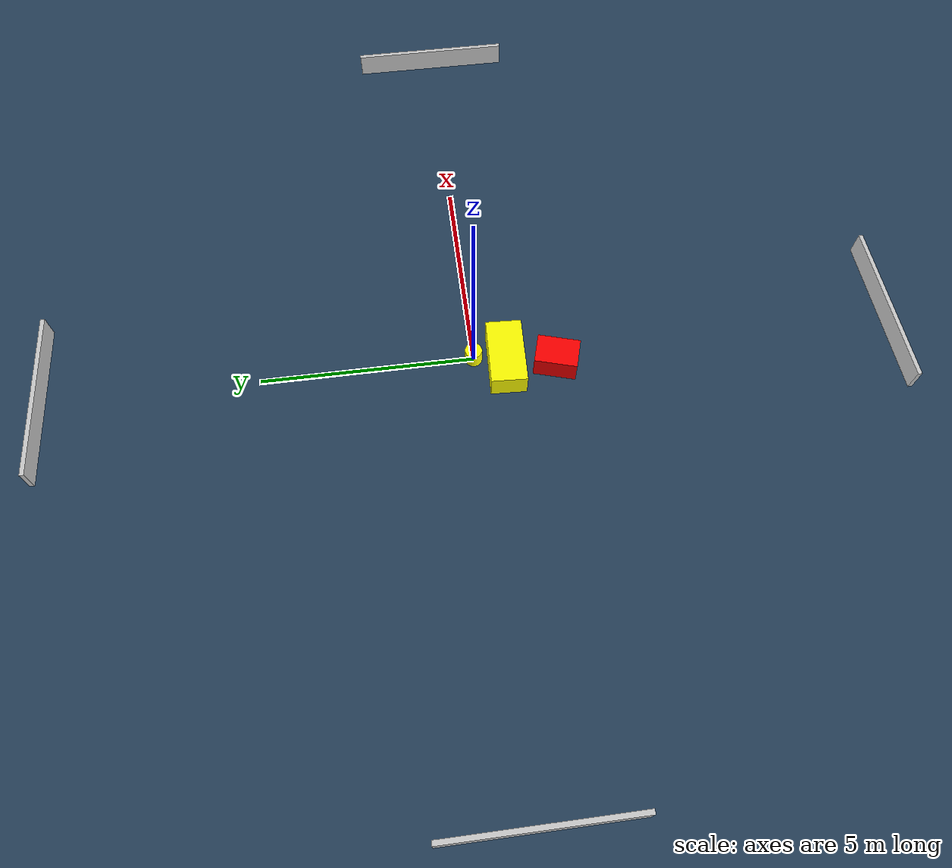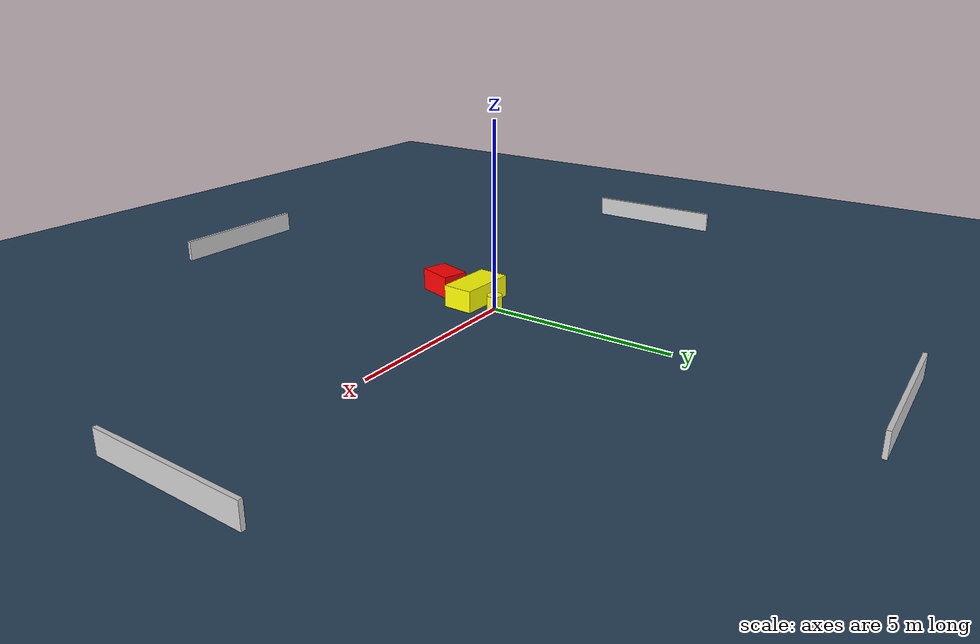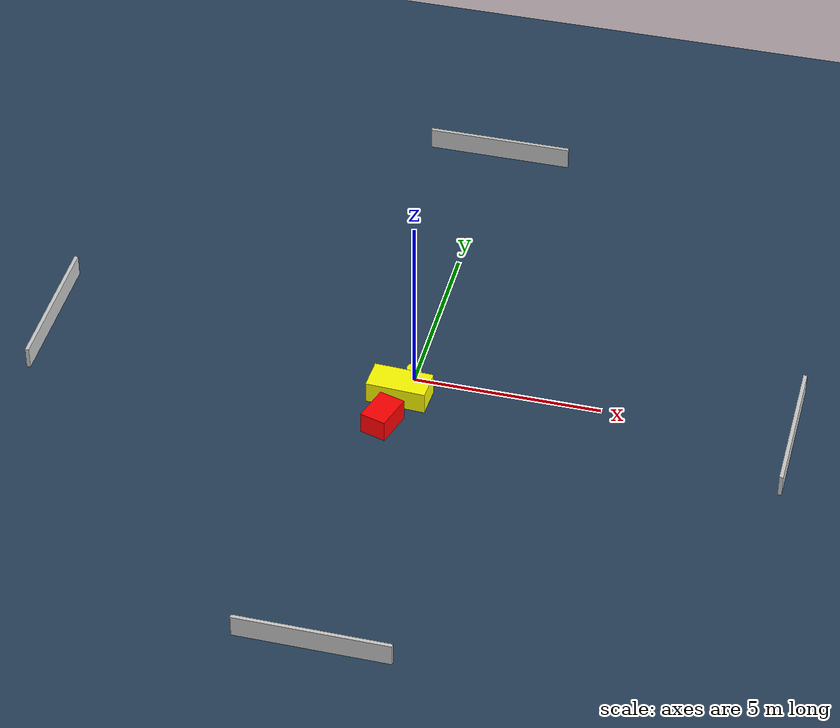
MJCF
<?xml version="1.0" ?>
<mujoco model="generated_environment">
  <option timestep="0.01" integrator="RK4" cone="elliptic"/>
  <default>
    <geom density="1"/>
  </default>
  <asset>
    <texture builtin="gradient" height="3072" name="skybox" rgb1="0.3 0.5 0.7" rgb2="0 0 0" type="skybox" width="512"/>
    <texture builtin="checker" height="300" name="groundplane" rgb1="0.2 0.3 0.4" rgb2="0.1 0.2 0.3" type="2d" width="300"/>
    <material name="groundplane" reflectance="0.2" texrepeat="5 5" texture="groundplane"/>
  </asset>
  <worldbody>
    <light dir="0 0 -1" directional="true" pos="0 0 1.5"/>
    <geom condim="3" friction="0.5 0.005 0.001" material="groundplane" name="floor" pos="0 0 0" size="0 0 0.05" type="plane"/>
    <body name="walls">
      <geom name="wall_1" condim="4" pos="-10.0 0.0 0.3" rgba="0.800000011920929 0.800000011920929 0.800000011920929 1.0" size="0.05 2.0 0.3" type="box"/>
      <geom name="wall_2" condim="4" pos="10.0 0.0 0.3" rgba="0.800000011920929 0.800000011920929 0.800000011920929 1.0" size="0.05 2.0 0.3" type="box"/>
      <geom name="wall_3" condim="4" pos="0.0 -10.0 0.3" rgba="0.800000011920929 0.800000011920929 0.800000011920929 1.0" size="2.0 0.05 0.3" type="box"/>
      <geom name="wall_4" condim="4" pos="0.0 10.0 0.3" rgba="0.800000011920929 0.800000011920929 0.800000011920929 1.0" size="2.0 0.05 0.3" type="box"/>
    </body>
    <body name="robot">
      <joint name="joint_x" type="slide" pos="0 0 0" axis="1 0 0"/>
      <joint name="joint_y" type="slide" pos="0 0 0" axis="0 1 0"/>
      <geom name="robot" type="cylinder" pos="0.0 0.0 0.2" size="0.2 0.2 0.0" mass="5.0" friction="1.0 0.005 0.0001" condim="4" rgba="1.0 1.0 0.0 1.0"/>
    </body>
    <body name="obstacle_1_movable">
      <geom name="obstacle_1_movable" condim="4" pos="-0.2012460683432521 -0.7403797684175321 0.3" euler="0 0 177.3767003870649" friction="0.0 0.005 0.001" rgba="1.0 1.0 0.0 1.0" size="0.7970937362016406 0.4208116524324145 0.3" type="box" mass="0.1"/>
      <joint type="free"/>
    </body>
    <body name="obstacle_2_static">
      <geom name="obstacle_2_static" condim="4" pos="-0.36119763047484565 -1.9125537359033191 0.3" euler="0 0 253.59656717092798" friction="0.0 0.005 0.001" rgba="1.0 0.0 0.0 1.0" size="0.49828148848412385 0.35385386383578166 0.3" type="box"/>
    </body>
  </worldbody>
  <actuator>
    <motor name="actuator_x" joint="joint_x" gear="1" ctrlrange="-1 1"/>
    <motor name="actuator_y" joint="joint_y" gear="1" ctrlrange="-1 1"/>
  </actuator>
</mujoco>
